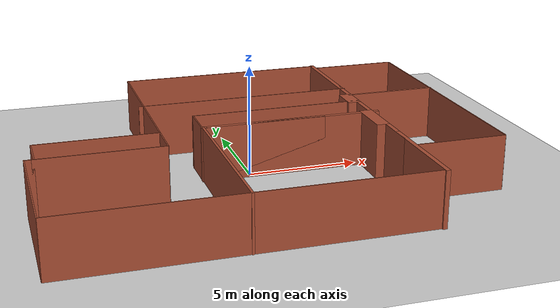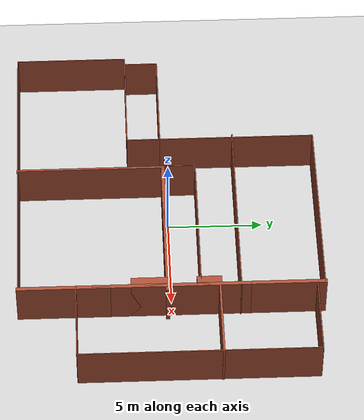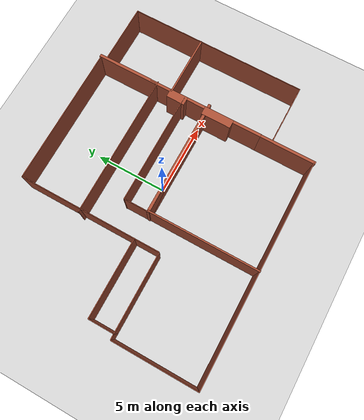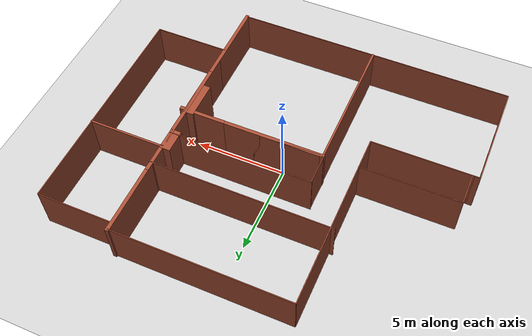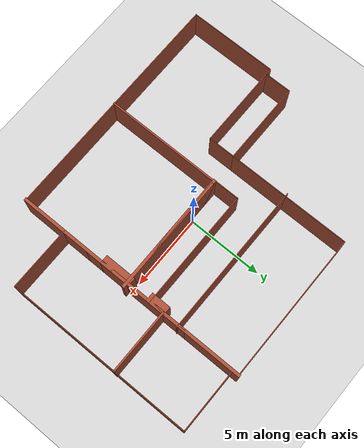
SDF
<?xml version="1.0" ?>
<sdf version="1.6">
  <world name="default">
    <include>
      <uri>model://ground_plane</uri>
    </include>
    <include>
      <uri>model://sun</uri>
    </include>
    <include>
      <uri>model://ANPL_Lab_real_test</uri>
    </include>
    <plugin name='gazebo_octomap' filename='librotors_gazebo_octomap_plugin.so'/>
  </world>
</sdf>

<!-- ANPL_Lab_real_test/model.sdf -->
<sdf version='1.6'>
  <model name='ANPL_Lab'>
    <pose frame=''>0.025 0 0 0 -0 0</pose>
    <link name='Wall_0'>
      <collision name='Wall_0_Collision'>
        <geometry>
          <box>
            <size>8.2 0.2 2.5</size>
          </box>
        </geometry>
        <pose frame=''>0 0 1.25 0 -0 0</pose>
      </collision>
      <visual name='Wall_0_Visual'>
        <pose frame=''>0 0 1.25 0 -0 0</pose>
        <geometry>
          <box>
            <size>8.2 0.2 2.5</size>
          </box>
        </geometry>
        <material>
          <script>
            <uri>file://media/materials/scripts/gazebo.material</uri>
            <name>Gazebo/Bricks</name>
          </script>
          <ambient>0.435294 0.796078 0.67451 1</ambient>
        </material>
      </visual>
      <pose frame=''>5.675 0 0 0 0 -1.5708</pose>
    </link>
    <link name='Wall_1'>
      <collision name='Wall_1_Collision'>
        <geometry>
          <box>
            <size>8.05 0.2 2.5</size>
          </box>
        </geometry>
        <pose frame=''>0 0 1.25 0 -0 0</pose>
      </collision>
      <visual name='Wall_1_Visual'>
        <pose frame=''>0 0 1.25 0 -0 0</pose>
        <geometry>
          <box>
            <size>8.05 0.2 2.5</size>
          </box>
        </geometry>
        <material>
          <script>
            <uri>file://media/materials/scripts/gazebo.material</uri>
            <name>Gazebo/Bricks</name>
          </script>
          <ambient>0.435294 0.796078 0.67451 1</ambient>
        </material>
      </visual>
      <pose frame=''>2 -0.2 0 0 -0 0</pose>
    </link>
    <link name='Wall_2'>
      <collision name='Wall_2_Collision'>
        <geometry>
          <box>
            <size>5.535 0.05 2.5</size>
          </box>
        </geometry>
        <pose frame=''>0 0 1.25 0 -0 0</pose>
      </collision>
      <visual name='Wall_2_Visual'>
        <pose frame=''>0 0 1.25 0 -0 0</pose>
        <geometry>
          <box>
            <size>5.535 0.05 2.5</size>
          </box>
        </geometry>
        <material>
          <script>
            <uri>file://media/materials/scripts/gazebo.material</uri>
            <name>Gazebo/Bricks</name>
          </script>
          <ambient>0.435294 0.796078 0.67451 1</ambient>
        </material>
      </visual>
      <pose frame=''>-6.865 -2.05 0 0 -0 0</pose>
    </link>
    <link name='Wall_3'>
      <collision name='Wall_3_Collision'>
        <geometry>
          <box>
            <size>1.76 0.05 2.5</size>
          </box>
        </geometry>
        <pose frame=''>0 0 1.25 0 -0 0</pose>
      </collision>
      <visual name='Wall_3_Visual'>
        <pose frame=''>0 0 1.25 0 -0 0</pose>
        <geometry>
          <box>
            <size>1.76 0.05 2.5</size>
          </box>
        </geometry>
        <material>
          <script>
            <uri>file://media/materials/scripts/gazebo.material</uri>
            <name>Gazebo/Bricks</name>
          </script>
          <ambient>0.435294 0.796078 0.67451 1</ambient>
        </material>
      </visual>
      <pose frame=''>-4.1 -1.175 0 0 -0 1.5708</pose>
    </link>
    <link name='Wall_4'>
      <collision name='Wall_4_Collision'>
        <geometry>
          <box>
            <size>8.05 0.05 2.5</size>
          </box>
        </geometry>
        <pose frame=''>0 0 1.25 0 -0 0</pose>
      </collision>
      <visual name='Wall_4_Visual'>
        <pose frame=''>0 0 1.25 0 -0 0</pose>
        <geometry>
          <box>
            <size>8.05 0.05 2.5</size>
          </box>
        </geometry>
        <material>
          <script>
            <uri>file://media/materials/scripts/gazebo.material</uri>
            <name>Gazebo/Bricks</name>
          </script>
          <ambient>0.435294 0.796078 0.67451 1</ambient>
        </material>
      </visual>
      <pose frame=''>1.75 1.52 0 0 -0 0</pose>
    </link>
    <link name='Wall_5'>
      <collision name='Wall_5_Collision'>
        <geometry>
          <box>
            <size>1.72 0.05 2.5</size>
          </box>
        </geometry>
        <pose frame=''>0 0 1.25 0 -0 0</pose>
      </collision>
      <visual name='Wall_5_Visual'>
        <pose frame=''>0 0 1.25 0 -0 0</pose>
        <geometry>
          <box>
            <size>1.72 0.05 2.5</size>
          </box>
        </geometry>
        <material>
          <script>
            <uri>file://media/materials/scripts/gazebo.material</uri>
            <name>Gazebo/Bricks</name>
          </script>
          <ambient>0.435294 0.796078 0.67451 1</ambient>
        </material>
      </visual>
      <pose frame=''>-2.23 0.66 0 0 -0 1.5708</pose>
    </link>
    <link name='Wall_6'>
      <collision name='Wall_6_Collision'>
        <geometry>
          <box>
            <size>10.15 0.05 2.5</size>
          </box>
        </geometry>
        <pose frame=''>0 0 1.25 0 -0 0</pose>
      </collision>
      <visual name='Wall_6_Visual'>
        <pose frame=''>0 0 1.25 0 -0 0</pose>
        <geometry>
          <box>
            <size>10.15 0.05 2.5</size>
          </box>
        </geometry>
        <material>
          <script>
            <uri>file://media/materials/scripts/gazebo.material</uri>
            <name>Gazebo/Bricks</name>
          </script>
          <ambient>0.435294 0.796078 0.67451 1</ambient>
        </material>
      </visual>
      <pose frame=''>0.75 3.59 0 0 -0 0</pose>
    </link>

    <link name='Wall_165'>
      <collision name='Wall_165_Collision'>
        <geometry>
          <box>
            <size>5.86 0.05 2.5</size>
          </box>
        </geometry>
        <pose frame=''>0 0 1.25 0 -0 0</pose>
      </collision>
      <visual name='Wall_165_Visual'>
        <pose frame=''>0 0 1.25 0 -0 0</pose>
        <geometry>
          <box>
            <size>5.86 0.05 2.5</size>
          </box>
        </geometry>
        <material>
          <script>
            <uri>file://media/materials/scripts/gazebo.material</uri>
            <name>Gazebo/Bricks</name>
          </script>
          <ambient>0.435294 0.796078 0.67451 1</ambient>
        </material>
      </visual>
      <pose frame=''>-9.925 -4.975 0 0 -0 1.5708</pose>
    </link>
    <link name='Wall_167'>
      <collision name='Wall_167_Collision'>
        <geometry>
          <box>
            <size>0.41 0.05 2.5</size>
          </box>
        </geometry>
        <pose frame=''>0 0 1.25 0 -0 0</pose>
      </collision>
      <visual name='Wall_167_Visual'>
        <pose frame=''>0 0 1.25 0 -0 0</pose>
        <geometry>
          <box>
            <size>0.41 0.05 2.5</size>
          </box>
        </geometry>
        <material>
          <script>
            <uri>file://media/materials/scripts/gazebo.material</uri>
            <name>Gazebo/Bricks</name>
          </script>
          <ambient>0.435294 0.796078 0.67451 1</ambient>
        </material>
      </visual>
      <pose frame=''>-9.725 -2.05 0 0 -0 0</pose>
    </link>
    <link name='Wall_169'>
      <collision name='Wall_169_Collision'>
        <geometry>
          <box>
            <size>1.76 0.05 2.5</size>
          </box>
        </geometry>
        <pose frame=''>0 0 1.25 0 -0 0</pose>
      </collision>
      <visual name='Wall_169_Visual'>
        <pose frame=''>0 0 1.25 0 -0 0</pose>
        <geometry>
          <box>
            <size>1.76 0.05 2.5</size>
          </box>
        </geometry>
        <material>
          <script>
            <uri>file://media/materials/scripts/gazebo.material</uri>
            <name>Gazebo/Bricks</name>
          </script>
          <ambient>0.435294 0.796078 0.67451 1</ambient>
        </material>
      </visual>
      <pose frame=''>-9.525 -1.175 0 0 -0 1.5708</pose>
    </link>
    <link name='Wall_171'>
      <collision name='Wall_171_Collision'>
        <geometry>
          <box>
            <size>5.435 0.05 2.5</size>
          </box>
        </geometry>
        <pose frame=''>0 0 1.25 0 -0 0</pose>
      </collision>
      <visual name='Wall_171_Visual'>
        <pose frame=''>0 0 1.25 0 -0 0</pose>
        <geometry>
          <box>
            <size>5.435 0.05 2.5</size>
          </box>
        </geometry>
        <material>
          <script>
            <uri>file://media/materials/scripts/gazebo.material</uri>
            <name>Gazebo/Bricks</name>
          </script>
          <ambient>0.435294 0.796078 0.67451 1</ambient>
        </material>
      </visual>
      <pose frame=''>-6.8125 -0.3 0 0 -0 0</pose>
    </link>
    <link name='Wall_173'>
      <collision name='Wall_173_Collision'>
        <geometry>
          <box>
            <size>8.21 0.05 2.5</size>
          </box>
        </geometry>
        <pose frame=''>0 0 1.25 0 -0 0</pose>
      </collision>
      <visual name='Wall_173_Visual'>
        <pose frame=''>0 0 1.25 0 -0 0</pose>
        <geometry>
          <box>
            <size>8.21 0.05 2.5</size>
          </box>
        </geometry>
        <material>
          <script>
            <uri>file://media/materials/scripts/gazebo.material</uri>
            <name>Gazebo/Bricks</name>
          </script>
          <ambient>0.435294 0.796078 0.67451 1</ambient>
        </material>
      </visual>
      <pose frame=''>-4.1 3.8 0 0 -0 1.5708</pose>
    </link>
    <link name='Wall_175'>
      <collision name='Wall_175_Collision'>
        <geometry>
          <box>
            <size>9.785 0.05 2.5</size>
          </box>
        </geometry>
        <pose frame=''>0 0 1.25 0 -0 0</pose>
      </collision>
      <visual name='Wall_175_Visual'>
        <pose frame=''>0 0 1.25 0 -0 0</pose>
        <geometry>
          <box>
            <size>9.785 0.05 2.5</size>
          </box>
        </geometry>
        <material>
          <script>
            <uri>file://media/materials/scripts/gazebo.material</uri>
            <name>Gazebo/Bricks</name>
          </script>
          <ambient>0.435294 0.796078 0.67451 1</ambient>
        </material>
      </visual>
      <pose frame=''>0.7875 7.9 0 0 -0 0</pose>
    </link>
    <link name='Wall_177'>
      <collision name='Wall_177_Collision'>
        <geometry>
          <box>
            <size>4.3 0.2 2.5</size>
          </box>
        </geometry>
        <pose frame=''>0 0 1.25 0 -0 0</pose>
      </collision>
      <visual name='Wall_177_Visual'>
        <pose frame=''>0 0 1.25 0 -0 0</pose>
        <geometry>
          <box>
            <size>4.3 0.2 2.5</size>
          </box>
        </geometry>
        <material>
          <script>
            <uri>file://media/materials/scripts/gazebo.material</uri>
            <name>Gazebo/Bricks</name>
          </script>
          <ambient>0.435294 0.796078 0.67451 1</ambient>
        </material>
      </visual>
      <pose frame=''>5.675 5.85 0 0 0 -1.5708</pose>
    </link>
    <link name='Wall_179'>
      <collision name='Wall_179_Collision'>
        <geometry>
          <box>
            <size>4.21 0.05 2.5</size>
          </box>
        </geometry>
        <pose frame=''>0 0 1.25 0 -0 0</pose>
      </collision>
      <visual name='Wall_179_Visual'>
        <pose frame=''>0 0 1.25 0 -0 0</pose>
        <geometry>
          <box>
            <size>4.21 0.05 2.5</size>
          </box>
        </geometry>
        <material>
          <script>
            <uri>file://media/materials/scripts/gazebo.material</uri>
            <name>Gazebo/Bricks</name>
          </script>
          <ambient>0.435294 0.796078 0.67451 1</ambient>
        </material>
      </visual>
      <pose frame=''>7.775 7.5 0 0 -0 0</pose>
    </link>
    <link name='Wall_181'>
      <collision name='Wall_181_Collision'>
        <geometry>
          <box>
            <size>12.44 0.05 2.5</size>
          </box>
        </geometry>
        <pose frame=''>0 0 1.25 0 -0 0</pose>
      </collision>
      <visual name='Wall_181_Visual'>
        <pose frame=''>0 0 1.25 0 -0 0</pose>
        <geometry>
          <box>
            <size>12.44 0.05 2.5</size>
          </box>
        </geometry>
        <material>
          <script>
            <uri>file://media/materials/scripts/gazebo.material</uri>
            <name>Gazebo/Bricks</name>
          </script>
          <ambient>0.435294 0.796078 0.67451 1</ambient>
        </material>
      </visual>
      <pose frame=''>9.875 1.285 0 0 0 -1.5708</pose>
    </link>
    <link name='Wall_183'>
      <collision name='Wall_183_Collision'>
        <geometry>
          <box>
            <size>1.3 0.6 2.5</size>
          </box>
        </geometry>
        <pose frame=''>0 0 1.25 0 -0 0</pose>
      </collision>
      <visual name='Wall_183_Visual'>
        <pose frame=''>0 0 1.25 0 -0 0</pose>
        <geometry>
          <box>
            <size>1.3 0.6 2.5</size>
          </box>
        </geometry>
        <material>
          <script>
            <uri>file://media/materials/scripts/gazebo.material</uri>
            <name>Gazebo/Bricks</name>
          </script>
          <ambient>0.435294 0.796078 0.67451 1</ambient>
        </material>
      </visual>
      <pose frame=''>5.475 1.95 0 0 0 -1.5708</pose>
    </link>
    <link name='Wall_185'>
      <collision name='Wall_185_Collision'>
        <geometry>
          <box>
            <size>2.1 0.6 2.5</size>
          </box>
        </geometry>
        <pose frame=''>0 0 1.25 0 -0 0</pose>
      </collision>
      <visual name='Wall_185_Visual'>
        <pose frame=''>0 0 1.25 0 -0 0</pose>
        <geometry>
          <box>
            <size>2.1 0.6 2.5</size>
          </box>
        </geometry>
        <material>
          <script>
            <uri>file://media/materials/scripts/gazebo.material</uri>
            <name>Gazebo/Bricks</name>
          </script>
          <ambient>0.435294 0.796078 0.67451 1</ambient>
        </material>
      </visual>
      <pose frame=''>5.475 -1.05 0 0 0 -1.5708</pose>
    </link>
    <link name='Wall_187'>
      <collision name='Wall_187_Collision'>
        <geometry>
          <box>
            <size>4.31 0.11 2.5</size>
          </box>
        </geometry>
        <pose frame=''>0 0 1.25 0 -0 0</pose>
      </collision>
      <visual name='Wall_187_Visual'>
        <pose frame=''>0 0 1.25 0 -0 0</pose>
        <geometry>
          <box>
            <size>4.31 0.11 2.5</size>
          </box>
        </geometry>
        <material>
          <script>
            <uri>file://media/materials/scripts/gazebo.material</uri>
            <name>Gazebo/Bricks</name>
          </script>
          <ambient>0.435294 0.796078 0.67451 1</ambient>
        </material>
      </visual>
      <pose frame=''>7.775 2.49 0 0 -0 0</pose>
    </link>
    <link name='Wall_201'>
      <collision name='Wall_201_Collision'>
        <geometry>
          <box>
            <size>4.21 0.05 2.5</size>
          </box>
        </geometry>
        <pose frame=''>0 0 1.25 0 -0 0</pose>
      </collision>
      <visual name='Wall_201_Visual'>
        <pose frame=''>0 0 1.25 0 -0 0</pose>
        <geometry>
          <box>
            <size>4.21 0.05 2.5</size>
          </box>
        </geometry>
        <material>
          <script>
            <uri>file://media/materials/scripts/gazebo.material</uri>
            <name>Gazebo/Bricks</name>
          </script>
          <ambient>0.435294 0.796078 0.67451 1</ambient>
        </material>
      </visual>
      <pose frame=''>7.775 -4.93 0 0 -0 3.14159</pose>
    </link>
    <link name='Wall_203'>
      <collision name='Wall_203_Collision'>
        <geometry>
          <box>
            <size>4.85 0.2 2.5</size>
          </box>
        </geometry>
        <pose frame=''>0 0 1.25 0 -0 0</pose>
      </collision>
      <visual name='Wall_203_Visual'>
        <pose frame=''>0 0 1.25 0 -0 0</pose>
        <geometry>
          <box>
            <size>4.85 0.2 2.5</size>
          </box>
        </geometry>
        <material>
          <script>
            <uri>file://media/materials/scripts/gazebo.material</uri>
            <name>Gazebo/Bricks</name>
          </script>
          <ambient>0.435294 0.796078 0.67451 1</ambient>
        </material>
      </visual>
      <pose frame=''>5.675 -5.575 0 0 0 -1.5708</pose>
    </link>
    <link name='Wall_205'>
      <collision name='Wall_205_Collision'>
        <geometry>
          <box>
            <size>15.61 0.05 2.5</size>
          </box>
        </geometry>
        <pose frame=''>0 0 1.25 0 -0 0</pose>
      </collision>
      <visual name='Wall_205_Visual'>
        <pose frame=''>0 0 1.25 0 -0 0</pose>
        <geometry>
          <box>
            <size>15.61 0.05 2.5</size>
          </box>
        </geometry>
        <material>
          <script>
            <uri>file://media/materials/scripts/gazebo.material</uri>
            <name>Gazebo/Bricks</name>
          </script>
          <ambient>0.435294 0.796078 0.67451 1</ambient>
        </material>
      </visual>
      <pose frame=''>-2.125 -7.9 0 0 -0 3.14159</pose>
    </link>
    <link name='Wall_207'>
      <collision name='Wall_207_Collision'>
        <geometry>
          <box>
            <size>7.81 0.11 2.5</size>
          </box>
        </geometry>
        <pose frame=''>0 0 1.25 0 -0 0</pose>
      </collision>
      <visual name='Wall_207_Visual'>
        <pose frame=''>0 0 1.25 0 -0 0</pose>
        <geometry>
          <box>
            <size>7.81 0.11 2.5</size>
          </box>
        </geometry>
        <material>
          <script>
            <uri>file://media/materials/scripts/gazebo.material</uri>
            <name>Gazebo/Bricks</name>
          </script>
          <ambient>0.435294 0.796078 0.67451 1</ambient>
        </material>
      </visual>
      <pose frame=''>-2.175 -4.05 0 0 -0 1.5708</pose>
    </link>
    <link name='Wall_209'>
      <collision name='Wall_209_Collision'>
        <geometry>
          <box>
            <size>5.692 0.2 2.5</size>
          </box>
        </geometry>
        <pose frame=''>0 0 1.25 0 -0 0</pose>
      </collision>
      <visual name='Wall_209_Visual'>
        <pose frame=''>0 0 1.25 0 -0 0</pose>
        <geometry>
          <box>
            <size>5.692 0.2 2.5</size>
          </box>
        </geometry>
        <material>
          <script>
            <uri>file://media/materials/scripts/gazebo.material</uri>
            <name>Gazebo/Bricks</name>
          </script>
          <ambient>0.435294 0.796078 0.67451 1</ambient>
        </material>
      </visual>
      <pose frame=''>0.571 -0.2 0 0 -0 0</pose>
    </link>
    <static>1</static>
  </model>
</sdf>
